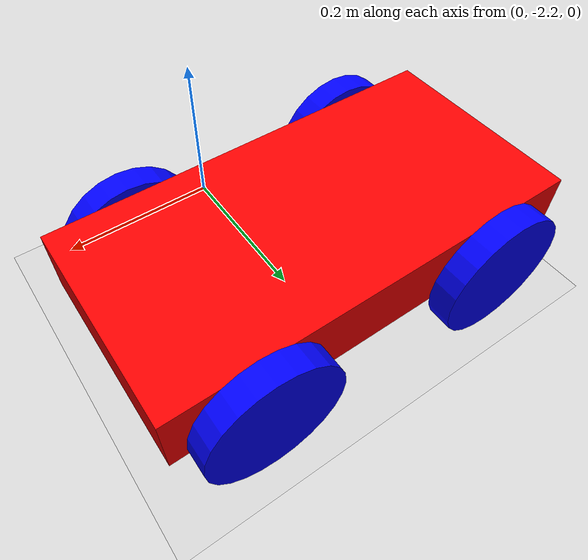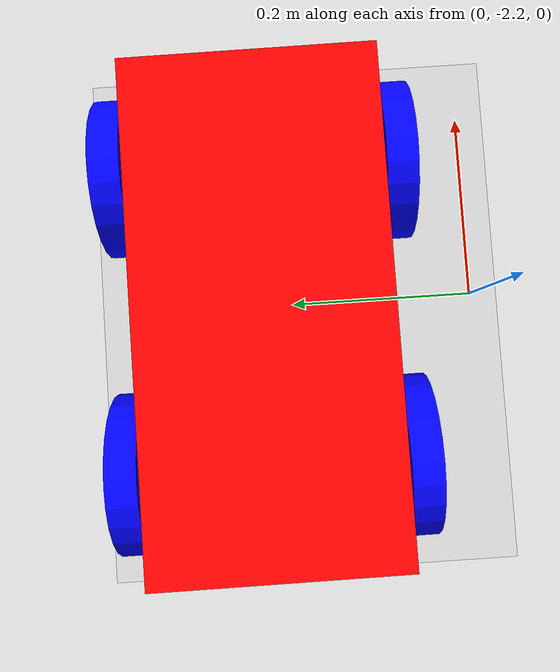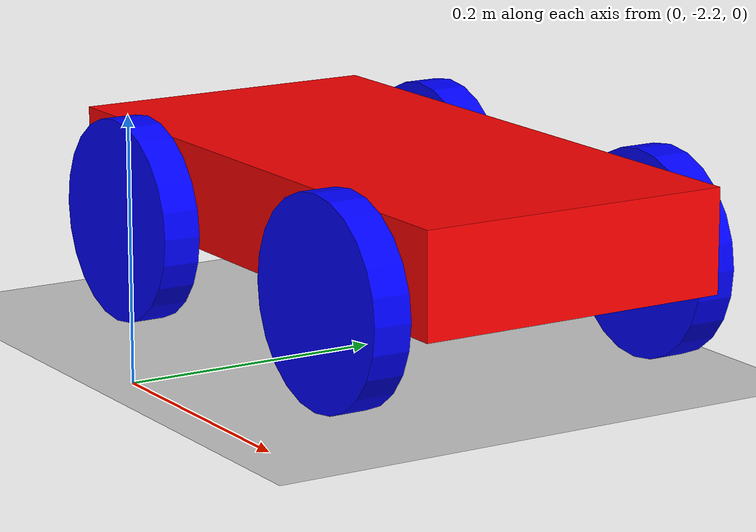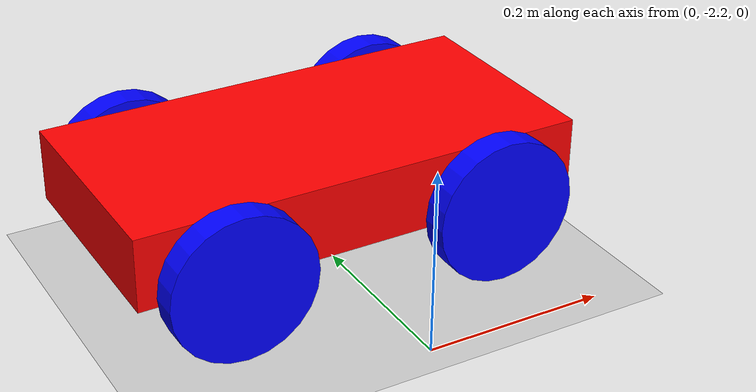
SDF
<sdf version="1.6">
 <world name="default">
  <model name="ground_plane">
   <static>1</static>
   <link name="link">
    <collision name="collision">
     <geometry><plane><normal>0 0 1</normal><size>100 100</size></plane></geometry>
     <surface><friction><ode><mu>100</mu><mu2>50</mu2></ode></friction></surface>
    </collision>
    <visual name="visual">
     <cast_shadows>0</cast_shadows>
     <geometry><plane><normal>0 0 1</normal><size>100 100</size></plane></geometry>
     <material>
      <script><uri>file://media/materials/scripts/gazebo.material</uri><name>Gazebo/Grey</name></script>
     </material>
    </visual>
   </link>
  </model>
  <model name="mybot_0">
   <link name="link_0">
    <pose>0 0 0.12 0 -0 0</pose>
    <inertial>
     <mass>1</mass>
     <inertia>
      <ixx>0.166667</ixx>
      <ixy>0</ixy>
      <ixz>0</ixz>
      <iyy>0.166667</iyy>
      <iyz>0</iyz>
      <izz>0.166667</izz>
     </inertia>
    </inertial>
    <visual name="visual">
     <geometry><box><size>0.5 0.25 0.08</size></box></geometry>
     <material>
      <lighting>1</lighting>
      <script><uri>file://media/materials/scripts/gazebo.material</uri><name>Gazebo/Grey</name></script>
      <shader type="pixel"><normal_map>__default__</normal_map></shader>
      <ambient>1 0 0 1</ambient>
      <diffuse>0.7 0.7 0.7 1</diffuse>
      <specular>0.01 0.01 0.01 1</specular>
      <emissive>0 0 0 1</emissive>
     </material>
    </visual>
    <collision name="collision">
     <geometry><box><size>0.5 0.25 0.08</size></box></geometry>
     <surface>
      <friction>
       <ode><mu>1</mu><mu2>1</mu2><fdir1>0 0 0</fdir1><slip1>0</slip1><slip2>0</slip2></ode>
       <torsional>
        <coefficient>1</coefficient>
        <patch_radius>0</patch_radius>
        <surface_radius>0</surface_radius>
        <use_patch_radius>1</use_patch_radius>
        <ode><slip>0</slip></ode>
       </torsional>
      </friction>
      <bounce><restitution_coefficient>0</restitution_coefficient><threshold>1e+06</threshold></bounce>
      <contact>
       <collide_without_contact>0</collide_without_contact>
       <collide_without_contact_bitmask>1</collide_without_contact_bitmask>
       <collide_bitmask>1</collide_bitmask>
       <ode>
        <soft_cfm>0</soft_cfm>
        <soft_erp>0.2</soft_erp>
        <kp>1e+13</kp>
        <kd>1</kd>
        <max_vel>0.01</max_vel>
        <min_depth>0</min_depth>
       </ode>
       <bullet>
        <split_impulse>1</split_impulse>
        <split_impulse_penetration_threshold>-0.01</split_impulse_penetration_threshold>
        <soft_cfm>0</soft_cfm>
        <soft_erp>0.2</soft_erp>
        <kp>1e+13</kp>
        <kd>1</kd>
       </bullet>
      </contact>
     </surface>
    </collision>
   </link>
   <link name="link_1_clone">
    <pose>0.15 0.14 0.09 1.571 -0 0</pose>
    <inertial>
     <mass>1</mass>
     <inertia><ixx>0.145833</ixx><ixy>0</ixy><ixz>0</ixz><iyy>0.145833</iyy><iyz>0</iyz><izz>0.125</izz></inertia>
    </inertial>
    <visual name="visual">
     <geometry><cylinder><radius>0.08</radius><length>0.03</length></cylinder></geometry>
     <material>
      <lighting>1</lighting>
      <script><uri>file://media/materials/scripts/gazebo.material</uri><name>Gazebo/Grey</name></script>
      <shader type="pixel"><normal_map>__default__</normal_map></shader>
      <ambient>0 0 1 1</ambient>
      <diffuse>0.7 0.7 0.7 1</diffuse>
      <specular>0.01 0.01 0.01 1</specular>
      <emissive>0 0 0 1</emissive>
     </material>
    </visual>
    <collision name="collision">
     <geometry><cylinder><radius>0.08</radius><length>0.03</length></cylinder></geometry>
     <surface>
      <friction>
       <ode><mu>1</mu><mu2>1</mu2><fdir1>0 0 0</fdir1><slip1>0</slip1><slip2>0</slip2></ode>
       <torsional>
        <coefficient>1</coefficient>
        <patch_radius>0</patch_radius>
        <surface_radius>0</surface_radius>
        <use_patch_radius>1</use_patch_radius>
        <ode><slip>0</slip></ode>
       </torsional>
      </friction>
      <bounce><restitution_coefficient>0</restitution_coefficient><threshold>1e+06</threshold></bounce>
      <contact>
       <collide_without_contact>0</collide_without_contact>
       <collide_without_contact_bitmask>1</collide_without_contact_bitmask>
       <collide_bitmask>1</collide_bitmask>
       <ode>
        <soft_cfm>0</soft_cfm>
        <soft_erp>0.2</soft_erp>
        <kp>1e+13</kp>
        <kd>1</kd>
        <max_vel>0.01</max_vel>
        <min_depth>0</min_depth>
       </ode>
       <bullet>
        <split_impulse>1</split_impulse>
        <split_impulse_penetration_threshold>-0.01</split_impulse_penetration_threshold>
        <soft_cfm>0</soft_cfm>
        <soft_erp>0.2</soft_erp>
        <kp>1e+13</kp>
        <kd>1</kd>
       </bullet>
      </contact>
     </surface>
    </collision>
   </link>
   <link name="link_1_clone_clone">
    <pose>-0.15 0.14 0.09 1.571 -0 0</pose>
    <inertial>
     <mass>1</mass>
     <inertia><ixx>0.145833</ixx><ixy>0</ixy><ixz>0</ixz><iyy>0.145833</iyy><iyz>0</iyz><izz>0.125</izz></inertia>
    </inertial>
    <visual name="visual">
     <geometry><cylinder><radius>0.08</radius><length>0.03</length></cylinder></geometry>
     <material>
      <lighting>1</lighting>
      <script><uri>file://media/materials/scripts/gazebo.material</uri><name>Gazebo/Grey</name></script>
      <shader type="pixel"><normal_map>__default__</normal_map></shader>
      <ambient>0 0 1 1</ambient>
      <diffuse>0.7 0.7 0.7 1</diffuse>
      <specular>0.01 0.01 0.01 1</specular>
      <emissive>0 0 0 1</emissive>
     </material>
    </visual>
    <collision name="collision">
     <geometry><cylinder><radius>0.08</radius><length>0.03</length></cylinder></geometry>
     <surface>
      <friction>
       <ode><mu>1</mu><mu2>1</mu2><fdir1>0 0 0</fdir1><slip1>0</slip1><slip2>0</slip2></ode>
       <torsional>
        <coefficient>1</coefficient>
        <patch_radius>0</patch_radius>
        <surface_radius>0</surface_radius>
        <use_patch_radius>1</use_patch_radius>
        <ode><slip>0</slip></ode>
       </torsional>
      </friction>
      <bounce><restitution_coefficient>0</restitution_coefficient><threshold>1e+06</threshold></bounce>
      <contact>
       <collide_without_contact>0</collide_without_contact>
       <collide_without_contact_bitmask>1</collide_without_contact_bitmask>
       <collide_bitmask>1</collide_bitmask>
       <ode>
        <soft_cfm>0</soft_cfm>
        <soft_erp>0.2</soft_erp>
        <kp>1e+13</kp>
        <kd>1</kd>
        <max_vel>0.01</max_vel>
        <min_depth>0</min_depth>
       </ode>
       <bullet>
        <split_impulse>1</split_impulse>
        <split_impulse_penetration_threshold>-0.01</split_impulse_penetration_threshold>
        <soft_cfm>0</soft_cfm>
        <soft_erp>0.2</soft_erp>
        <kp>1e+13</kp>
        <kd>1</kd>
       </bullet>
      </contact>
     </surface>
    </collision>
   </link>
   <link name="link_1_clone_clone_0">
    <pose>-0.15 -0.14 0.09 1.571 -0 0</pose>
    <inertial>
     <mass>1</mass>
     <inertia><ixx>0.145833</ixx><ixy>0</ixy><ixz>0</ixz><iyy>0.145833</iyy><iyz>0</iyz><izz>0.125</izz></inertia>
    </inertial>
    <visual name="visual">
     <geometry><cylinder><radius>0.08</radius><length>0.03</length></cylinder></geometry>
     <material>
      <lighting>1</lighting>
      <script><uri>file://media/materials/scripts/gazebo.material</uri><name>Gazebo/Grey</name></script>
      <shader type="pixel"><normal_map>__default__</normal_map></shader>
      <ambient>0 0 1 1</ambient>
      <diffuse>0.7 0.7 0.7 1</diffuse>
      <specular>0.01 0.01 0.01 1</specular>
      <emissive>0 0 0 1</emissive>
     </material>
    </visual>
    <collision name="collision">
     <geometry><cylinder><radius>0.08</radius><length>0.03</length></cylinder></geometry>
     <surface>
      <friction>
       <ode><mu>1</mu><mu2>1</mu2><fdir1>0 0 0</fdir1><slip1>0</slip1><slip2>0</slip2></ode>
       <torsional>
        <coefficient>1</coefficient>
        <patch_radius>0</patch_radius>
        <surface_radius>0</surface_radius>
        <use_patch_radius>1</use_patch_radius>
        <ode><slip>0</slip></ode>
       </torsional>
      </friction>
      <bounce><restitution_coefficient>0</restitution_coefficient><threshold>1e+06</threshold></bounce>
      <contact>
       <collide_without_contact>0</collide_without_contact>
       <collide_without_contact_bitmask>1</collide_without_contact_bitmask>
       <collide_bitmask>1</collide_bitmask>
       <ode>
        <soft_cfm>0</soft_cfm>
        <soft_erp>0.2</soft_erp>
        <kp>1e+13</kp>
        <kd>1</kd>
        <max_vel>0.01</max_vel>
        <min_depth>0</min_depth>
       </ode>
       <bullet>
        <split_impulse>1</split_impulse>
        <split_impulse_penetration_threshold>-0.01</split_impulse_penetration_threshold>
        <soft_cfm>0</soft_cfm>
        <soft_erp>0.2</soft_erp>
        <kp>1e+13</kp>
        <kd>1</kd>
       </bullet>
      </contact>
     </surface>
    </collision>
   </link>
   <link name="link_1_clone_clone_1">
    <pose>0.15 -0.14 0.09 1.571 -0 0</pose>
    <inertial>
     <mass>1</mass>
     <inertia><ixx>0.145833</ixx><ixy>0</ixy><ixz>0</ixz><iyy>0.145833</iyy><iyz>0</iyz><izz>0.125</izz></inertia>
    </inertial>
    <visual name="visual">
     <geometry><cylinder><radius>0.08</radius><length>0.03</length></cylinder></geometry>
     <material>
      <lighting>1</lighting>
      <script><uri>file://media/materials/scripts/gazebo.material</uri><name>Gazebo/Grey</name></script>
      <shader type="pixel"><normal_map>__default__</normal_map></shader>
      <ambient>0 0 1 1</ambient>
      <diffuse>0.7 0.7 0.7 1</diffuse>
      <specular>0.01 0.01 0.01 1</specular>
      <emissive>0 0 0 1</emissive>
     </material>
    </visual>
    <collision name="collision">
     <geometry><cylinder><radius>0.08</radius><length>0.03</length></cylinder></geometry>
     <surface>
      <friction>
       <ode><mu>1</mu><mu2>1</mu2><fdir1>0 0 0</fdir1><slip1>0</slip1><slip2>0</slip2></ode>
       <torsional>
        <coefficient>1</coefficient>
        <patch_radius>0</patch_radius>
        <surface_radius>0</surface_radius>
        <use_patch_radius>1</use_patch_radius>
        <ode><slip>0</slip></ode>
       </torsional>
      </friction>
      <bounce><restitution_coefficient>0</restitution_coefficient><threshold>1e+06</threshold></bounce>
      <contact>
       <collide_without_contact>0</collide_without_contact>
       <collide_without_contact_bitmask>1</collide_without_contact_bitmask>
       <collide_bitmask>1</collide_bitmask>
       <ode>
        <soft_cfm>0</soft_cfm>
        <soft_erp>0.2</soft_erp>
        <kp>1e+13</kp>
        <kd>1</kd>
        <max_vel>0.01</max_vel>
        <min_depth>0</min_depth>
       </ode>
       <bullet>
        <split_impulse>1</split_impulse>
        <split_impulse_penetration_threshold>-0.01</split_impulse_penetration_threshold>
        <soft_cfm>0</soft_cfm>
        <soft_erp>0.2</soft_erp>
        <kp>1e+13</kp>
        <kd>1</kd>
       </bullet>
      </contact>
     </surface>
    </collision>
   </link>
   <joint name="link_0_JOINT_0" type="revolute">
    <parent>link_0</parent>
    <child>link_1_clone</child>
    <axis>
     <xyz>0 0 1</xyz>
     <use_parent_model_frame>0</use_parent_model_frame>
     <limit>
      <lower>-1.79769e+308</lower>
      <upper>1.79769e+308</upper>
      <effort>-1</effort>
      <velocity>-1</velocity>
     </limit>
     <dynamics>
      <spring_reference>0</spring_reference>
      <spring_stiffness>0</spring_stiffness>
      <damping>0</damping>
      <friction>0</friction>
     </dynamics>
    </axis>
    <physics>
     <ode><limit><cfm>0</cfm><erp>0.2</erp></limit><suspension><cfm>0</cfm><erp>0.2</erp></suspension></ode>
    </physics>
   </joint>
   <joint name="link_0_JOINT_1" type="revolute">
    <parent>link_0</parent>
    <child>link_1_clone_clone</child>
    <axis>
     <xyz>0 0 1</xyz>
     <use_parent_model_frame>0</use_parent_model_frame>
     <limit>
      <lower>-1.79769e+308</lower>
      <upper>1.79769e+308</upper>
      <effort>-1</effort>
      <velocity>-1</velocity>
     </limit>
     <dynamics>
      <spring_reference>0</spring_reference>
      <spring_stiffness>0</spring_stiffness>
      <damping>0</damping>
      <friction>0</friction>
     </dynamics>
    </axis>
    <physics>
     <ode><limit><cfm>0</cfm><erp>0.2</erp></limit><suspension><cfm>0</cfm><erp>0.2</erp></suspension></ode>
    </physics>
   </joint>
   <joint name="link_0_JOINT_2" type="revolute">
    <parent>link_0</parent>
    <child>link_1_clone_clone_1</child>
    <axis>
     <xyz>0 0 1</xyz>
     <use_parent_model_frame>0</use_parent_model_frame>
     <limit>
      <lower>-1.79769e+308</lower>
      <upper>1.79769e+308</upper>
      <effort>-1</effort>
      <velocity>-1</velocity>
     </limit>
     <dynamics>
      <spring_reference>0</spring_reference>
      <spring_stiffness>0</spring_stiffness>
      <damping>0</damping>
      <friction>0</friction>
     </dynamics>
    </axis>
    <physics>
     <ode><limit><cfm>0</cfm><erp>0.2</erp></limit><suspension><cfm>0</cfm><erp>0.2</erp></suspension></ode>
    </physics>
   </joint>
   <joint name="link_0_JOINT_3" type="revolute">
    <parent>link_0</parent>
    <child>link_1_clone_clone_0</child>
    <axis>
     <xyz>0 0 1</xyz>
     <use_parent_model_frame>0</use_parent_model_frame>
     <limit>
      <lower>-1.79769e+308</lower>
      <upper>1.79769e+308</upper>
      <effort>-1</effort>
      <velocity>-1</velocity>
     </limit>
     <dynamics>
      <spring_reference>0</spring_reference>
      <spring_stiffness>0</spring_stiffness>
      <damping>0</damping>
      <friction>0</friction>
     </dynamics>
    </axis>
    <physics>
     <ode><limit><cfm>0</cfm><erp>0.2</erp></limit><suspension><cfm>0</cfm><erp>0.2</erp></suspension></ode>
    </physics>
   </joint>
   <static>0</static>
   <pose>-0.014512 -1.97168 -0.009998 0 -8e-06 0.004899</pose>
  </model>
 </world>
</sdf>
